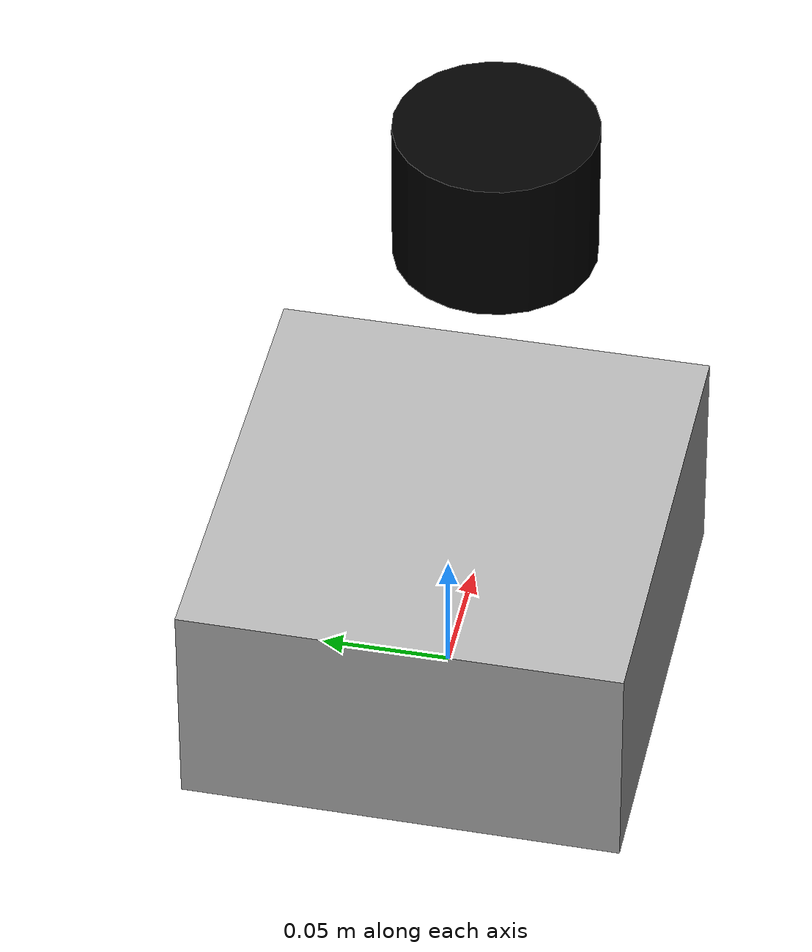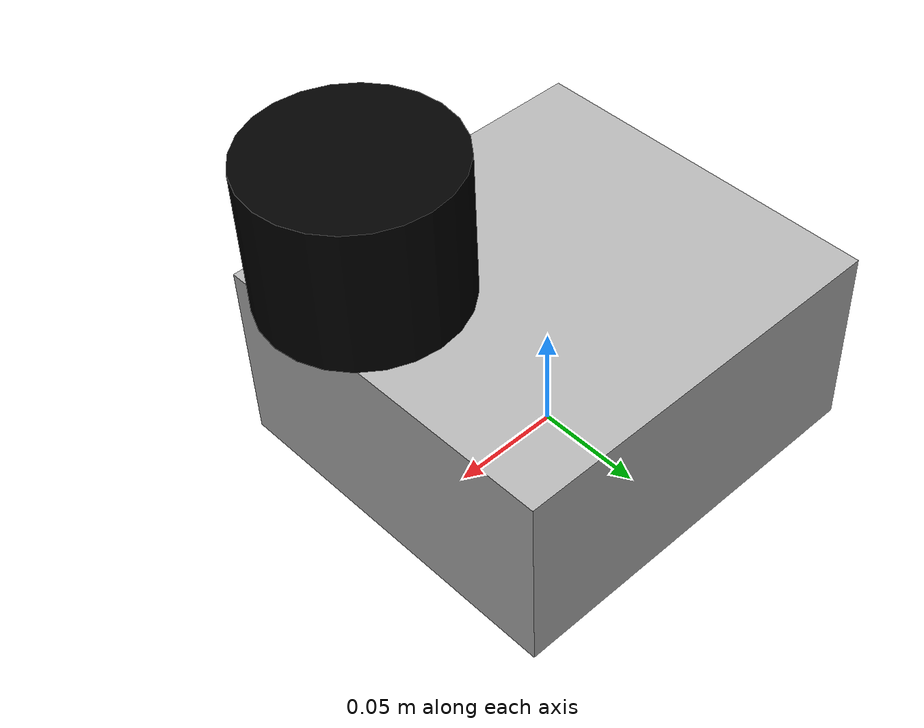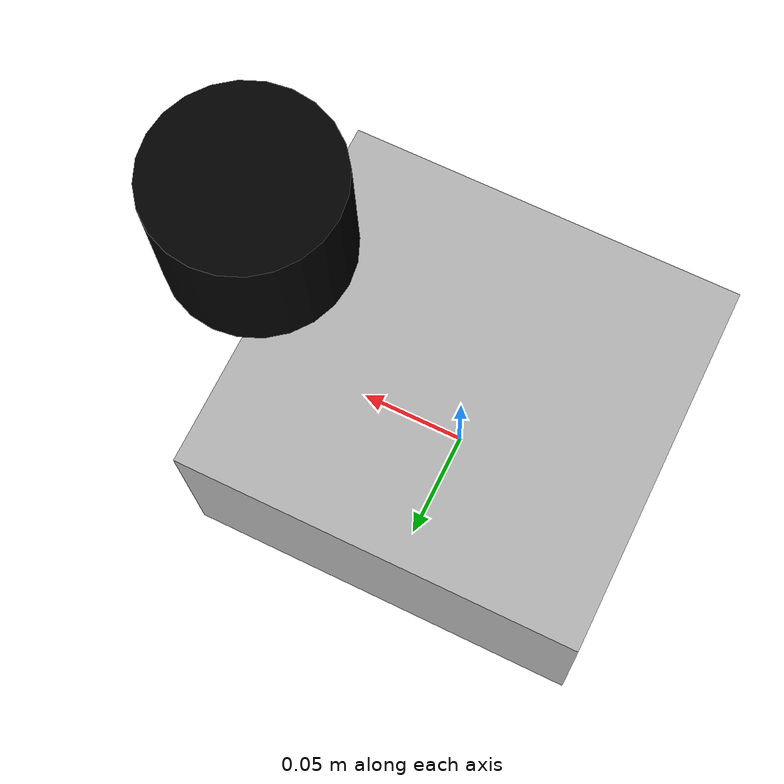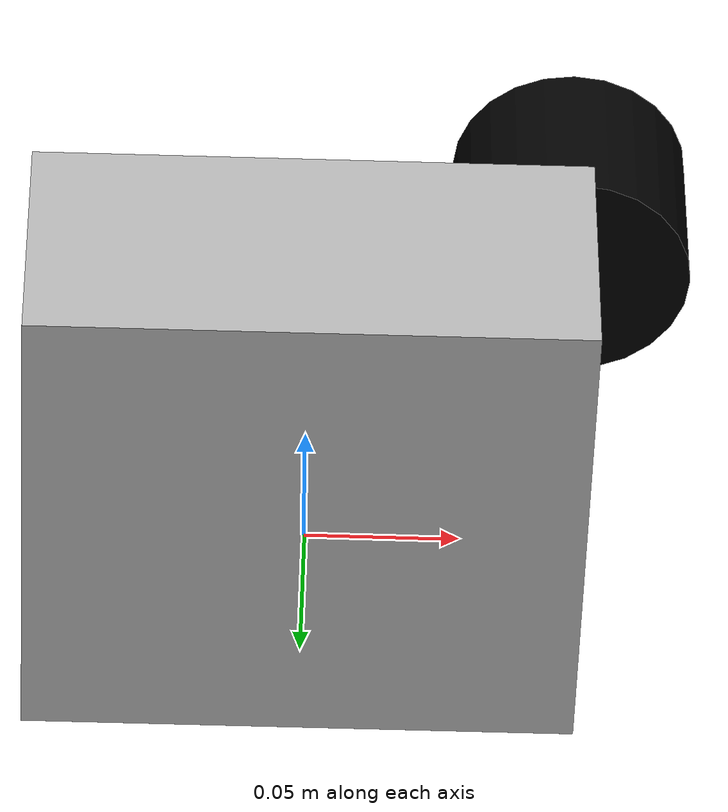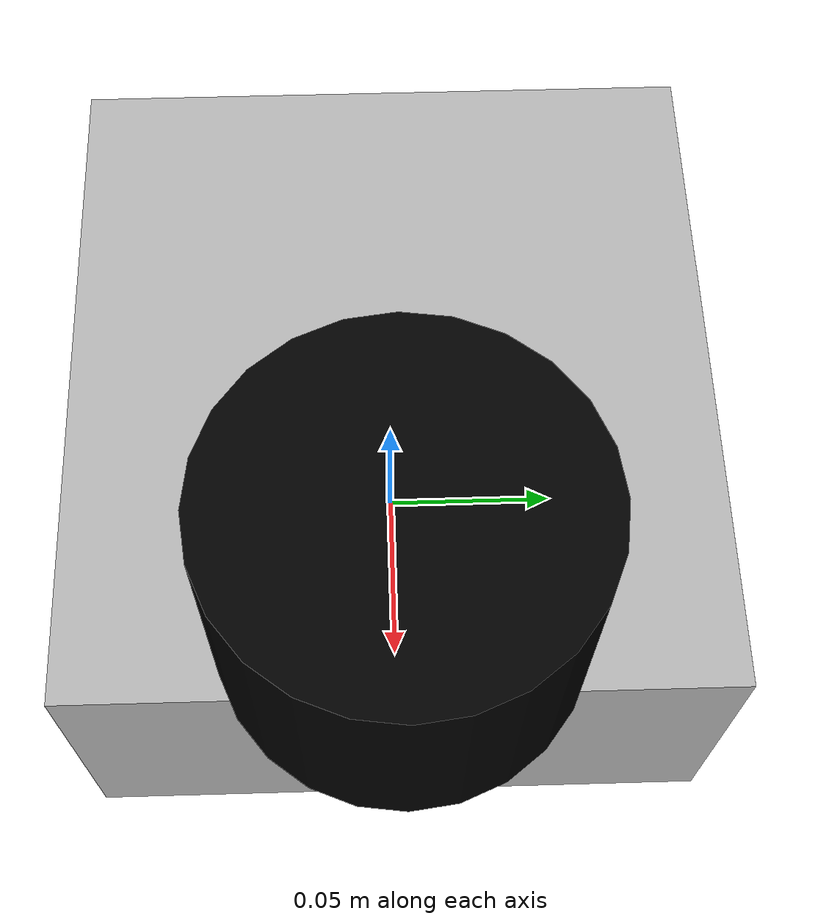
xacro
<?xml version="1.0"?>
<robot name="wave_rover" xmlns:xacro="http://www.ros.org/wiki/xacro">

  <!-- 차체 크기 상수 정의 (단위: m) -->
  <xacro:property name="base_length" value="0.183"/>
  <xacro:property name="base_width"  value="0.170"/>
  <xacro:property name="base_height" value="0.0885"/>

  <!-- 타이어 크기 상수 정의 -->
  <xacro:property name="wheel_radius" value="0.040"/>
  <xacro:property name="wheel_width"  value="0.0425"/>

  <!-- base_footprint: 로봇 바닥 기준점 -->
  <!-- Nav2 표준에서 권장하는 로봇 기준 좌표계 -->
  <link name="base_footprint"/>

  <!-- base_footprint → base_link 연결 -->
  <joint name="base_joint" type="fixed">
    <parent link="base_footprint"/>
    <child  link="base_link"/>
    <origin xyz="0 0 ${base_height/2}" rpy="0 0 0"/>
  </joint>

  <!-- base_link: 차체 중심 -->
  <link name="base_link">
    <visual>
      <geometry>
        <box size="${base_length} ${base_width} ${base_height}"/>
      </geometry>
      <material name="silver">
        <color rgba="0.7 0.7 0.7 1.0"/>
      </material>
    </visual>
    <collision>
      <geometry>
        <box size="${base_length} ${base_width} ${base_height}"/>
      </geometry>
    </collision>
    <inertial>
      <!-- 차체 무게: 860g -->
      <mass value="0.860"/>
      <inertia
        ixx="0.003" ixy="0.0" ixz="0.0"
        iyy="0.004" iyz="0.0"
        izz="0.005"/>
    </inertial>
  </link>

  <!-- laser: LiDAR 위치 -->
  <joint name="laser_joint" type="fixed">
    <parent link="base_link"/>
    <child  link="laser"/>
    <origin xyz="0.09 0 0.12075" rpy="0 0 0"/>
  </joint>

  <link name="laser">
    <visual>
      <geometry>
        <cylinder radius="0.04" length="0.06"/>
      </geometry>
      <material name="black">
        <color rgba="0.0 0.0 0.0 1.0"/>
      </material>
    </visual>
    <collision>
      <geometry>
        <cylinder radius="0.04" length="0.06"/>
      </geometry>
    </collision>
    <inertial>
      <mass value="0.170"/>
      <inertia
        ixx="0.0001" ixy="0.0" ixz="0.0"
        iyy="0.0001" iyz="0.0"
        izz="0.0001"/>
    </inertial>
  </link>

</robot>
